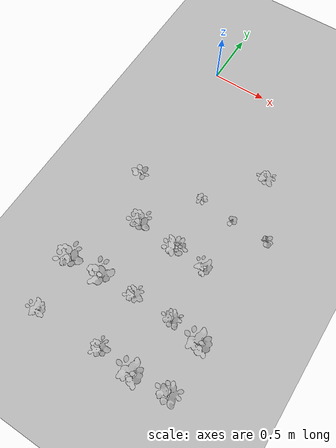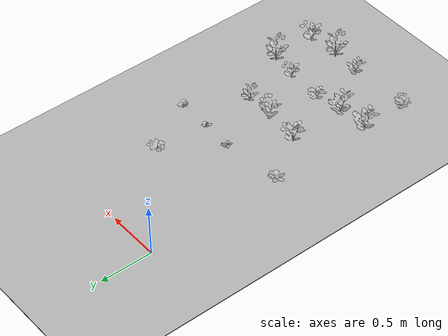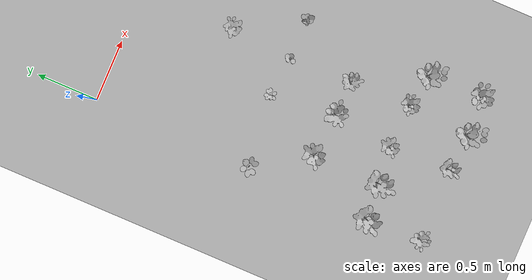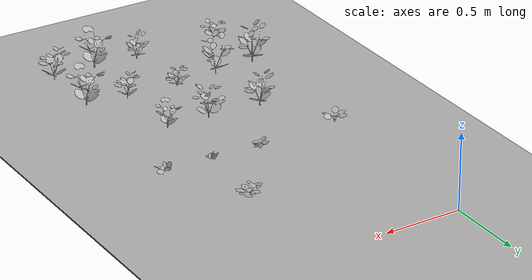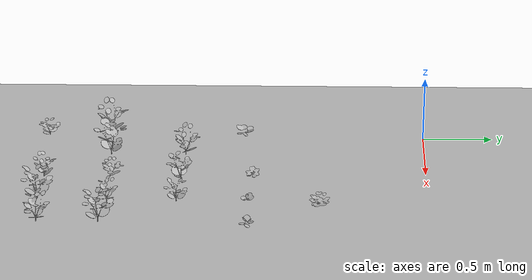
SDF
<sdf version="1.7">
 <world name="default">
  <model name="ground_plane">
   <static>1</static>
   <link name="link">
    <collision name="collision">
     <geometry><plane><normal>0 0 1</normal><size>100 100</size></plane></geometry>
     <surface>
      <contact><collide_bitmask>65535</collide_bitmask></contact>
      <friction><ode><mu>100</mu><mu2>50</mu2></ode></friction>
     </surface>
    </collision>
    <visual name="visual">
     <cast_shadows>0</cast_shadows>
     <geometry><plane><normal>0 0 1</normal><size>100 100</size></plane></geometry>
     <material>
      <ambient>0.2 0.2 0.2 1.0</ambient>
      <diffuse>0.2 0.2 0.2 1.0</diffuse>
      <specular>0.2 0.2 0.2 1.0</specular>
      <emissive>0.2 0.2 0.2 1.0</emissive>
     </material>
    </visual>
   </link>
  </model>
  <model name="ground">
   <pose>5 -0.5 0.01  3.141592654 0 0</pose>
   <static>true</static>
   <link name="body">
    <visual name="visual">
     <cast_shadows>0</cast_shadows>
     <geometry>
      <mesh><uri>file:///home/ifcosta/catkin_ws/src/cnn_line/worlds/models/ground.obj</uri></mesh>
     </geometry>
    </visual>
   </link>
  </model>
  <model name="plt_0">
   <pose>-0.000553 -1.3 0.0132 0.0 0.0 0.6266</pose>
   <static>true</static>
   <link name="body">
    <visual name="visual">
     <geometry>
      <mesh><uri>file:///home/ifcosta/catkin_ws/src/cnn_line/worlds/models/plant2.obj</uri></mesh>
     </geometry>
    </visual>
   </link>
  </model>
  <model name="plt_2">
   <pose>0.57 -1.24 0.0132 0.0 0.0 0.026245</pose>
   <static>true</static>
   <link name="body">
    <visual name="visual">
     <geometry>
      <mesh><uri>file:///home/ifcosta/catkin_ws/src/cnn_line/worlds/models/plant5.obj</uri></mesh>
     </geometry>
    </visual>
   </link>
  </model>
  <model name="plt_3">
   <pose>0.885 -1.27 0.0162 0.0 0.0 0.75018</pose>
   <static>true</static>
   <link name="body">
    <visual name="visual">
     <geometry>
      <mesh><uri>file:///home/ifcosta/catkin_ws/src/cnn_line/worlds/models/plant6.obj</uri></mesh>
     </geometry>
    </visual>
   </link>
  </model>
  <model name="plt_4">
   <pose>1.21 -1.27 0.0178 0.0 0.0 1.1314</pose>
   <static>true</static>
   <link name="body">
    <visual name="visual">
     <geometry>
      <mesh><uri>file:///home/ifcosta/catkin_ws/src/cnn_line/worlds/models/plant7.obj</uri></mesh>
     </geometry>
    </visual>
   </link>
  </model>
  <model name="plt_37">
   <pose>0.934 -0.771 0.0124 0.0 0.0 -0.88673</pose>
   <static>true</static>
   <link name="body">
    <visual name="visual">
     <geometry>
      <mesh><uri>file:///home/ifcosta/catkin_ws/src/cnn_line/worlds/models/plant0.obj</uri></mesh>
     </geometry>
    </visual>
   </link>
  </model>
  <model name="plt_10102">
   <pose>-0.0036 -2.74 0.0161 0.0 0.0 1.758</pose>
   <static>true</static>
   <link name="body">
    <visual name="visual">
     <geometry>
      <mesh><uri>file:///home/ifcosta/catkin_ws/src/cnn_line/worlds/models/plant10.obj</uri></mesh>
     </geometry>
    </visual>
   </link>
  </model>
  <model name="plt_10104">
   <pose>0.583 -2.73 0.0131 0.0 0.0 0.05832</pose>
   <static>true</static>
   <link name="body">
    <visual name="visual">
     <geometry>
      <mesh><uri>file:///home/ifcosta/catkin_ws/src/cnn_line/worlds/models/plant11.obj</uri></mesh>
     </geometry>
    </visual>
   </link>
  </model>
  <model name="plt_10105">
   <pose>0.88 -2.75 0.0171 0.0 0.0 1.3035</pose>
   <static>true</static>
   <link name="body">
    <visual name="visual">
     <geometry>
      <mesh><uri>file:///home/ifcosta/catkin_ws/src/cnn_line/worlds/models/plant13.obj</uri></mesh>
     </geometry>
    </visual>
   </link>
  </model>
  <model name="plt_10106">
   <pose>1.18 -2.73 0.0154 0.0 0.0 -1.0559</pose>
   <static>true</static>
   <link name="body">
    <visual name="visual">
     <geometry>
      <mesh><uri>file:///home/ifcosta/catkin_ws/src/cnn_line/worlds/models/plant12.obj</uri></mesh>
     </geometry>
    </visual>
   </link>
  </model>
  <model name="plt_10136">
   <pose>-0.0215 -2.29 0.0179 0.0 0.0 -0.14077</pose>
   <static>true</static>
   <link name="body">
    <visual name="visual">
     <geometry>
      <mesh><uri>file:///home/ifcosta/catkin_ws/src/cnn_line/worlds/models/plant13.obj</uri></mesh>
     </geometry>
    </visual>
   </link>
  </model>
  <model name="plt_10137">
   <pose>0.264 -2.27 0.0141 0.0 0.0 0.38373</pose>
   <static>true</static>
   <link name="body">
    <visual name="visual">
     <geometry>
      <mesh><uri>file:///home/ifcosta/catkin_ws/src/cnn_line/worlds/models/plant13.obj</uri></mesh>
     </geometry>
    </visual>
   </link>
  </model>
  <model name="plt_10138">
   <pose>0.559 -2.25 0.014 0.0 0.0 -0.39203</pose>
   <static>true</static>
   <link name="body">
    <visual name="visual">
     <geometry>
      <mesh><uri>file:///home/ifcosta/catkin_ws/src/cnn_line/worlds/models/plant10.obj</uri></mesh>
     </geometry>
    </visual>
   </link>
  </model>
  <model name="plt_10139">
   <pose>0.912 -2.26 0.0127 0.0 0.0 -0.96558</pose>
   <static>true</static>
   <link name="body">
    <visual name="visual">
     <geometry>
      <mesh><uri>file:///home/ifcosta/catkin_ws/src/cnn_line/worlds/models/plant11.obj</uri></mesh>
     </geometry>
    </visual>
   </link>
  </model>
  <model name="plt_10140">
   <pose>1.18 -2.3 0.0153 0.0 0.0 1.3615</pose>
   <static>true</static>
   <link name="body">
    <visual name="visual">
     <geometry>
      <mesh><uri>file:///home/ifcosta/catkin_ws/src/cnn_line/worlds/models/plant13.obj</uri></mesh>
     </geometry>
    </visual>
   </link>
  </model>
  <model name="plt_10171">
   <pose>0.268 -1.73 0.0156 0.0 0.0 -0.54995</pose>
   <static>true</static>
   <link name="body">
    <visual name="visual">
     <geometry>
      <mesh><uri>file:///home/ifcosta/catkin_ws/src/cnn_line/worlds/models/plant12.obj</uri></mesh>
     </geometry>
    </visual>
   </link>
  </model>
  <model name="plt_10172">
   <pose>0.625 -1.75 0.0164 0.0 0.0 2.1736</pose>
   <static>true</static>
   <link name="body">
    <visual name="visual">
     <geometry>
      <mesh><uri>file:///home/ifcosta/catkin_ws/src/cnn_line/worlds/models/plant12.obj</uri></mesh>
     </geometry>
    </visual>
   </link>
  </model>
  <model name="plt_10173">
   <pose>0.907 -1.77 0.0145 0.0 0.0 0.9737</pose>
   <static>true</static>
   <link name="body">
    <visual name="visual">
     <geometry>
      <mesh><uri>file:///home/ifcosta/catkin_ws/src/cnn_line/worlds/models/plant11.obj</uri></mesh>
     </geometry>
    </visual>
   </link>
  </model>
 </world>
</sdf>
